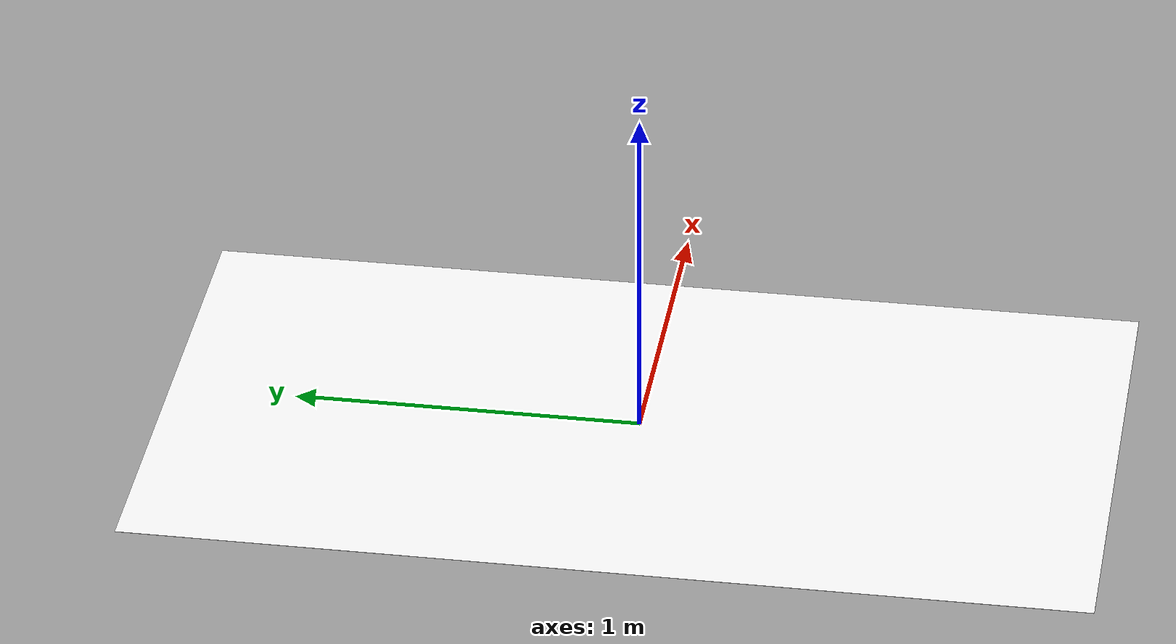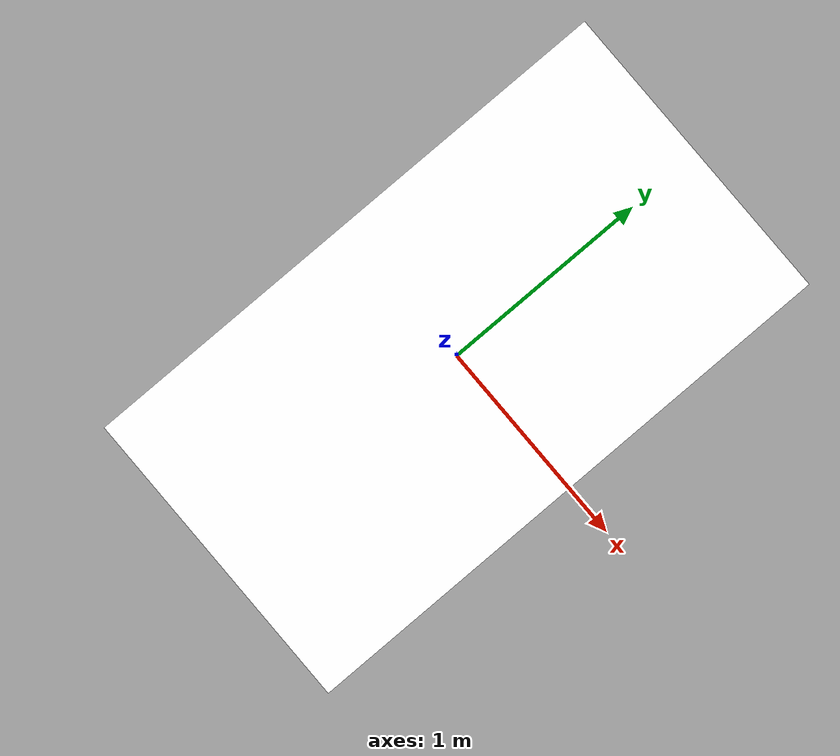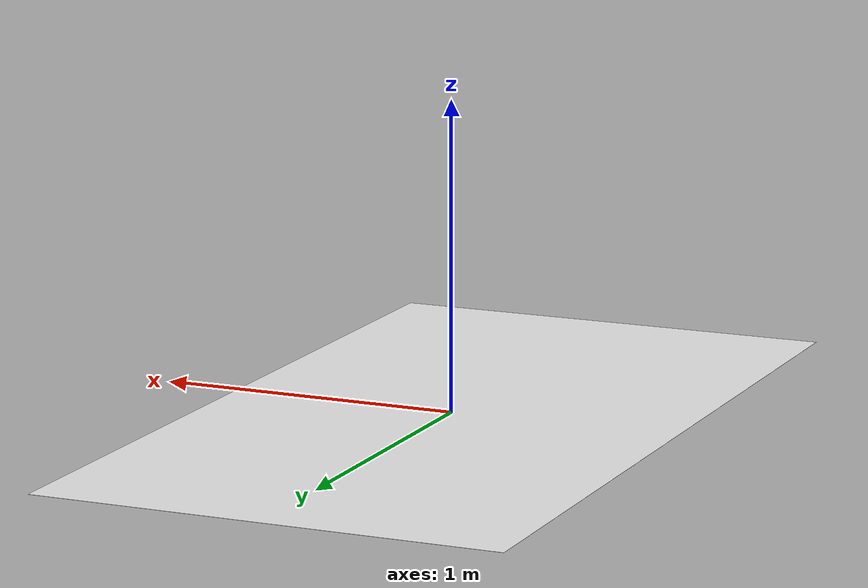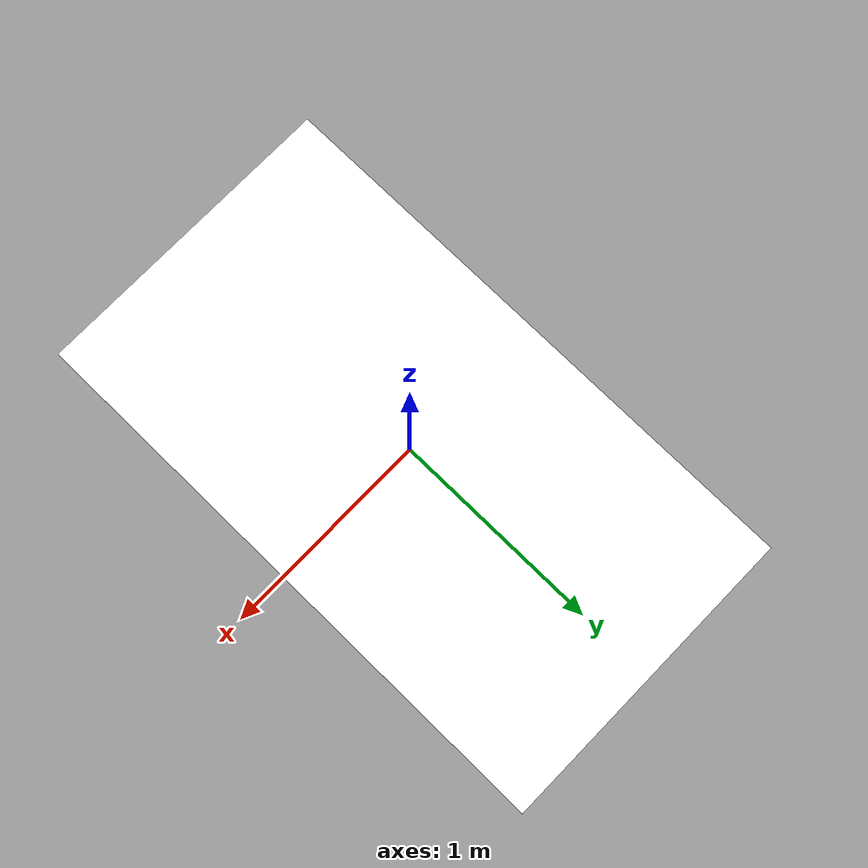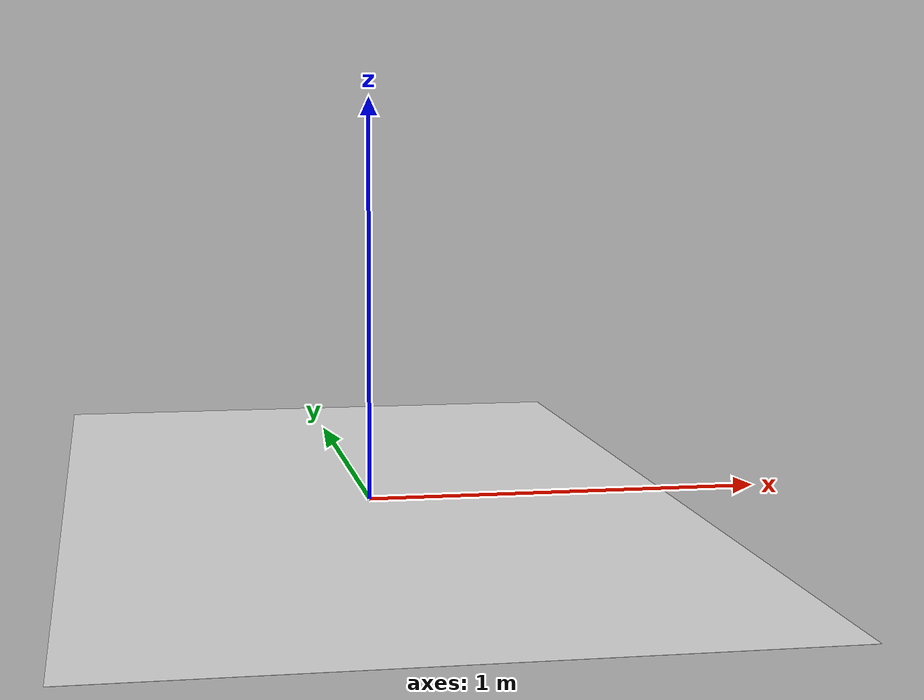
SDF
<?xml version='1.0'?>
<sdf version='1.6'>
  <model name='race_track17'>
    <static>true</static>
    <link name='link'>
      <visual name='visual'>
        <geometry>
          <box>
            <size>1.507 2.739 0.000553</size>
          </box>
        </geometry>
        <material>
          <script>
            <name>RaceTrack17/track17</name>
	    <uri>model://racetrack17/materials/scripts</uri>
            <uri>model://racetrack17/materials/textures</uri>
          </script>
          <ambient>1 1 1 1</ambient>
          <diffuse>1 1 1 1</diffuse>
          <specular>0.01 0.01 0.01 1</specular>
          <emissive>1 1 1 1</emissive>
        </material>
        <transparency>0</transparency>
      </visual>
      <collision name='collision'>
        <geometry>
          <box>
            <size>1.507 2.739 0.000553</size>
          </box>
        </geometry>
	<surface>
          <friction>
            <ode>
              <mu>100</mu>
              <mu2>50</mu2>
            </ode>
          </friction>
        </surface>
      </collision>
    </link>
  </model>
</sdf>
